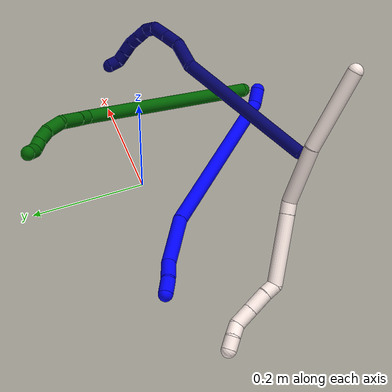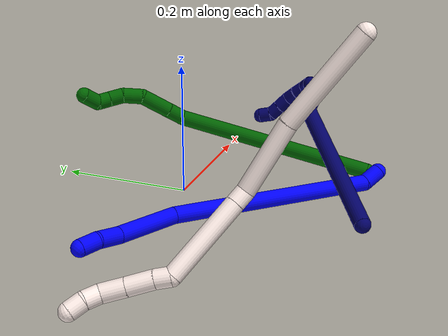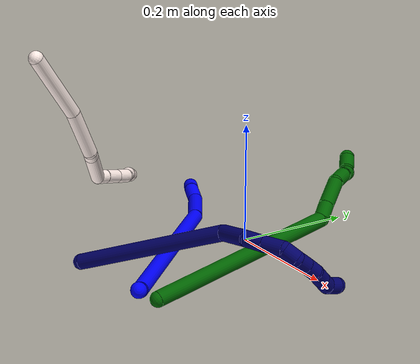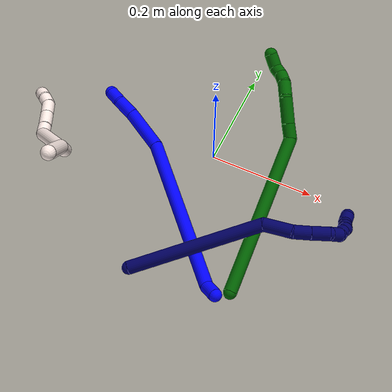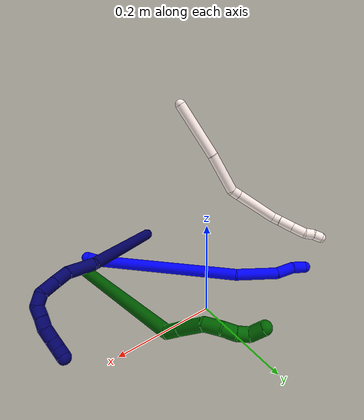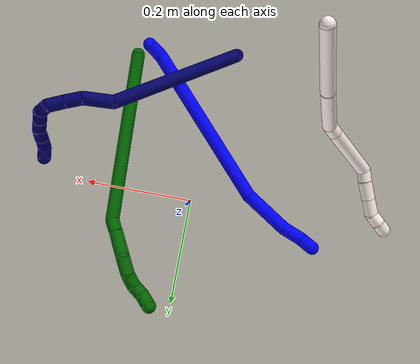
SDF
<sdf version="1.7">
 <world name="default">
  <model name="1">
   <static>0</static>
   <link name="1">
    <collision name="collision-cylinder-e_1_1_4">
     <pose>-0.001467 0.002556 -0.014623 -2.96853 -0.098531 1.03367</pose>
     <geometry><cylinder><radius>0.0125</radius><length>0.029834</length></cylinder></geometry>
     <surface>
      <friction><ode><mu>1.16</mu><mu2>1.16</mu2><slip1>0</slip1><slip2>0</slip2></ode></friction>
      <contact><ode><kp>1e+06</kp><kd>1</kd><max_vel>0</max_vel><min_depth>0.001</min_depth></ode></contact>
     </surface>
    </collision>
    <visual name="visual-cylinder-e_1_1_4">
     <pose>-0.001467 0.002556 -0.014623 -2.96853 -0.098531 1.03367</pose>
     <geometry><cylinder><radius>0.0125</radius><length>0.029834</length></cylinder></geometry>
     <material><ambient>0 0 1 1</ambient></material>
    </visual>
    <collision name="collision-cylinder-e_2_4_5">
     <pose>-0.062699 0.083069 -0.15115 -2.57264 -0.391686 1.19224</pose>
     <geometry><cylinder><radius>0.0125</radius><length>0.31311</length></cylinder></geometry>
     <surface>
      <friction><ode><mu>1.16</mu><mu2>1.16</mu2><slip1>0</slip1><slip2>0</slip2></ode></friction>
      <contact><ode><kp>1e+06</kp><kd>1</kd><max_vel>0</max_vel><min_depth>0.001</min_depth></ode></contact>
     </surface>
    </collision>
    <visual name="visual-cylinder-e_2_4_5">
     <pose>-0.062699 0.083069 -0.15115 -2.57264 -0.391686 1.19224</pose>
     <geometry><cylinder><radius>0.0125</radius><length>0.31311</length></cylinder></geometry>
     <material><ambient>0 0 1 1</ambient></material>
    </visual>
    <collision name="collision-cylinder-e_3_5_6">
     <pose>-0.142909 0.172766 -0.312311 -2.851 -0.462811 2.03013</pose>
     <geometry><cylinder><radius>0.0125</radius><length>0.091587</length></cylinder></geometry>
     <surface>
      <friction><ode><mu>1.16</mu><mu2>1.16</mu2><slip1>0</slip1><slip2>0</slip2></ode></friction>
      <contact><ode><kp>1e+06</kp><kd>1</kd><max_vel>0</max_vel><min_depth>0.001</min_depth></ode></contact>
     </surface>
    </collision>
    <visual name="visual-cylinder-e_3_5_6">
     <pose>-0.142909 0.172766 -0.312311 -2.851 -0.462811 2.03013</pose>
     <geometry><cylinder><radius>0.0125</radius><length>0.091587</length></cylinder></geometry>
     <material><ambient>0 0 1 1</ambient></material>
    </visual>
    <collision name="collision-cylinder-e_4_6_7">
     <pose>-0.176053 0.186626 -0.36538 -2.98928 -0.737685 2.75179</pose>
     <geometry><cylinder><radius>0.0125</radius><length>0.037761</length></cylinder></geometry>
     <surface>
      <friction><ode><mu>1.16</mu><mu2>1.16</mu2><slip1>0</slip1><slip2>0</slip2></ode></friction>
      <contact><ode><kp>1e+06</kp><kd>1</kd><max_vel>0</max_vel><min_depth>0.001</min_depth></ode></contact>
     </surface>
    </collision>
    <visual name="visual-cylinder-e_4_6_7">
     <pose>-0.176053 0.186626 -0.36538 -2.98928 -0.737685 2.75179</pose>
     <geometry><cylinder><radius>0.0125</radius><length>0.037761</length></cylinder></geometry>
     <material><ambient>0 0 1 1</ambient></material>
    </visual>
    <collision name="collision-cylinder-e_5_7_2">
     <pose>-0.194797 0.191326 -0.391385 -2.93312 -0.451596 2.28689</pose>
     <geometry><cylinder><radius>0.0125</radius><length>0.027707</length></cylinder></geometry>
     <surface>
      <friction><ode><mu>1.16</mu><mu2>1.16</mu2><slip1>0</slip1><slip2>0</slip2></ode></friction>
      <contact><ode><kp>1e+06</kp><kd>1</kd><max_vel>0</max_vel><min_depth>0.001</min_depth></ode></contact>
     </surface>
    </collision>
    <visual name="visual-cylinder-e_5_7_2">
     <pose>-0.194797 0.191326 -0.391385 -2.93312 -0.451596 2.28689</pose>
     <geometry><cylinder><radius>0.0125</radius><length>0.027707</length></cylinder></geometry>
     <material><ambient>0 0 1 1</ambient></material>
    </visual>
    <collision name="collision-sphere-2">
     <pose>-0.200843 0.193906 -0.40358 0 -0 0</pose>
     <geometry><sphere><radius>0.0125</radius></sphere></geometry>
     <surface>
      <friction><ode><mu>1.16</mu><mu2>1.16</mu2><slip1>0</slip1><slip2>0</slip2></ode></friction>
      <contact><ode><kp>1e+06</kp><kd>1</kd><max_vel>0</max_vel><min_depth>0.001</min_depth></ode></contact>
     </surface>
    </collision>
    <visual name="visual-sphere-2">
     <pose>-0.200843 0.193906 -0.40358 0 -0 0</pose>
     <geometry><sphere><radius>0.0125</radius></sphere></geometry>
     <material><ambient>0 0 1 1</ambient></material>
    </visual>
    <collision name="collision-sphere-7">
     <pose>-0.188751 0.188746 -0.37919 0 -0 0</pose>
     <geometry><sphere><radius>0.0125</radius></sphere></geometry>
     <surface>
      <friction><ode><mu>1.16</mu><mu2>1.16</mu2><slip1>0</slip1><slip2>0</slip2></ode></friction>
      <contact><ode><kp>1e+06</kp><kd>1</kd><max_vel>0</max_vel><min_depth>0.001</min_depth></ode></contact>
     </surface>
    </collision>
    <visual name="visual-sphere-7">
     <pose>-0.188751 0.188746 -0.37919 0 -0 0</pose>
     <geometry><sphere><radius>0.0125</radius></sphere></geometry>
     <material><ambient>0 0 1 1</ambient></material>
    </visual>
    <collision name="collision-sphere-6">
     <pose>-0.163354 0.184506 -0.351569 0 -0 0</pose>
     <geometry><sphere><radius>0.0125</radius></sphere></geometry>
     <surface>
      <friction><ode><mu>1.16</mu><mu2>1.16</mu2><slip1>0</slip1><slip2>0</slip2></ode></friction>
      <contact><ode><kp>1e+06</kp><kd>1</kd><max_vel>0</max_vel><min_depth>0.001</min_depth></ode></contact>
     </surface>
    </collision>
    <visual name="visual-sphere-6">
     <pose>-0.163354 0.184506 -0.351569 0 -0 0</pose>
     <geometry><sphere><radius>0.0125</radius></sphere></geometry>
     <material><ambient>0 0 1 1</ambient></material>
    </visual>
    <collision name="collision-sphere-5">
     <pose>-0.122464 0.161025 -0.273053 0 -0 0</pose>
     <geometry><sphere><radius>0.0125</radius></sphere></geometry>
     <surface>
      <friction><ode><mu>1.16</mu><mu2>1.16</mu2><slip1>0</slip1><slip2>0</slip2></ode></friction>
      <contact><ode><kp>1e+06</kp><kd>1</kd><max_vel>0</max_vel><min_depth>0.001</min_depth></ode></contact>
     </surface>
    </collision>
    <visual name="visual-sphere-5">
     <pose>-0.122464 0.161025 -0.273053 0 -0 0</pose>
     <geometry><sphere><radius>0.0125</radius></sphere></geometry>
     <material><ambient>0 0 1 1</ambient></material>
    </visual>
    <collision name="collision-sphere-1">
     <geometry><sphere><radius>0.0125</radius></sphere></geometry>
     <surface>
      <friction><ode><mu>1.16</mu><mu2>1.16</mu2><slip1>0</slip1><slip2>0</slip2></ode></friction>
      <contact><ode><kp>1e+06</kp><kd>1</kd><max_vel>0</max_vel><min_depth>0.001</min_depth></ode></contact>
     </surface>
    </collision>
    <visual name="visual-sphere-1">
     <geometry><sphere><radius>0.0125</radius></sphere></geometry>
     <material><ambient>0 0 1 1</ambient></material>
    </visual>
    <collision name="collision-sphere-4">
     <pose>-0.002935 0.005113 -0.029246 0 -0 0</pose>
     <geometry><sphere><radius>0.0125</radius></sphere></geometry>
     <surface>
      <friction><ode><mu>1.16</mu><mu2>1.16</mu2><slip1>0</slip1><slip2>0</slip2></ode></friction>
      <contact><ode><kp>1e+06</kp><kd>1</kd><max_vel>0</max_vel><min_depth>0.001</min_depth></ode></contact>
     </surface>
    </collision>
    <visual name="visual-sphere-4">
     <pose>-0.002935 0.005113 -0.029246 0 -0 0</pose>
     <geometry><sphere><radius>0.0125</radius></sphere></geometry>
     <material><ambient>0 0 1 1</ambient></material>
    </visual>
    <inertial>
     <pose>-0.089619 0.108515 -0.202016 0 -0 0</pose>
     <mass>0.5</mass>
     <inertia>
      <ixx>0.0031</ixx>
      <ixy>0</ixy>
      <ixz>0</ixz>
      <iyy>0.002017</iyy>
      <iyz>0</iyz>
      <izz>-0.000314</izz>
     </inertia>
    </inertial>
   </link>
   <pose>0.128806 -0.276052 0.023398 0.375192 0.970139 0.023917</pose>
  </model>
  <model name="6">
   <static>0</static>
   <link name="6">
    <collision name="collision-cylinder-e_1_1_4">
     <pose>-0.014463 0.148417 -0.055277 -1.92732 -0.091067 0.130998</pose>
     <geometry><cylinder><radius>0.0125</radius><length>0.31807</length></cylinder></geometry>
     <surface>
      <friction><ode><mu>1.16</mu><mu2>1.16</mu2><slip1>0</slip1><slip2>0</slip2></ode></friction>
      <contact><ode><kp>1e+06</kp><kd>1</kd><max_vel>0</max_vel><min_depth>0.001</min_depth></ode></contact>
     </surface>
    </collision>
    <visual name="visual-cylinder-e_1_1_4">
     <pose>-0.014463 0.148417 -0.055277 -1.92732 -0.091067 0.130998</pose>
     <geometry><cylinder><radius>0.0125</radius><length>0.31807</length></cylinder></geometry>
     <material><ambient>0 0.392157 0.003922 1</ambient></material>
    </visual>
    <collision name="collision-cylinder-e_2_4_5">
     <pose>-0.033086 0.310278 -0.106972 -1.31044 -0.29056 0.223932</pose>
     <geometry><cylinder><radius>0.0125</radius><length>0.029045</length></cylinder></geometry>
     <surface>
      <friction><ode><mu>1.16</mu><mu2>1.16</mu2><slip1>0</slip1><slip2>0</slip2></ode></friction>
      <contact><ode><kp>1e+06</kp><kd>1</kd><max_vel>0</max_vel><min_depth>0.001</min_depth></ode></contact>
     </surface>
    </collision>
    <visual name="visual-cylinder-e_2_4_5">
     <pose>-0.033086 0.310278 -0.106972 -1.31044 -0.29056 0.223932</pose>
     <geometry><cylinder><radius>0.0125</radius><length>0.029045</length></cylinder></geometry>
     <material><ambient>0 0.392157 0.003922 1</ambient></material>
    </visual>
    <collision name="collision-cylinder-e_3_5_6">
     <pose>-0.043823 0.34711 -0.098032 -1.34559 -0.267536 0.213641</pose>
     <geometry><cylinder><radius>0.0125</radius><length>0.049756</length></cylinder></geometry>
     <surface>
      <friction><ode><mu>1.16</mu><mu2>1.16</mu2><slip1>0</slip1><slip2>0</slip2></ode></friction>
      <contact><ode><kp>1e+06</kp><kd>1</kd><max_vel>0</max_vel><min_depth>0.001</min_depth></ode></contact>
     </surface>
    </collision>
    <visual name="visual-cylinder-e_3_5_6">
     <pose>-0.043823 0.34711 -0.098032 -1.34559 -0.267536 0.213641</pose>
     <geometry><cylinder><radius>0.0125</radius><length>0.049756</length></cylinder></geometry>
     <material><ambient>0 0.392157 0.003922 1</ambient></material>
    </visual>
    <collision name="collision-cylinder-e_4_6_7">
     <pose>-0.057939 0.38413 -0.095557 -1.77917 -0.495945 0.605433</pose>
     <geometry><cylinder><radius>0.0125</radius><length>0.031685</length></cylinder></geometry>
     <surface>
      <friction><ode><mu>1.16</mu><mu2>1.16</mu2><slip1>0</slip1><slip2>0</slip2></ode></friction>
      <contact><ode><kp>1e+06</kp><kd>1</kd><max_vel>0</max_vel><min_depth>0.001</min_depth></ode></contact>
     </surface>
    </collision>
    <visual name="visual-cylinder-e_4_6_7">
     <pose>-0.057939 0.38413 -0.095557 -1.77917 -0.495945 0.605433</pose>
     <geometry><cylinder><radius>0.0125</radius><length>0.031685</length></cylinder></geometry>
     <material><ambient>0 0.392157 0.003922 1</ambient></material>
    </visual>
    <collision name="collision-cylinder-e_5_7_8">
     <pose>-0.073669 0.405347 -0.101916 -2.00055 -0.776224 1.13455</pose>
     <geometry><cylinder><radius>0.0125</radius><length>0.023385</length></cylinder></geometry>
     <surface>
      <friction><ode><mu>1.16</mu><mu2>1.16</mu2><slip1>0</slip1><slip2>0</slip2></ode></friction>
      <contact><ode><kp>1e+06</kp><kd>1</kd><max_vel>0</max_vel><min_depth>0.001</min_depth></ode></contact>
     </surface>
    </collision>
    <visual name="visual-cylinder-e_5_7_8">
     <pose>-0.073669 0.405347 -0.101916 -2.00055 -0.776224 1.13455</pose>
     <geometry><cylinder><radius>0.0125</radius><length>0.023385</length></cylinder></geometry>
     <material><ambient>0 0.392157 0.003922 1</ambient></material>
    </visual>
    <collision name="collision-cylinder-e_6_8_9">
     <pose>-0.090324 0.418955 -0.106014 -1.67376 -0.949768 1.03611</pose>
     <geometry><cylinder><radius>0.0125</radius><length>0.020813</length></cylinder></geometry>
     <surface>
      <friction><ode><mu>1.16</mu><mu2>1.16</mu2><slip1>0</slip1><slip2>0</slip2></ode></friction>
      <contact><ode><kp>1e+06</kp><kd>1</kd><max_vel>0</max_vel><min_depth>0.001</min_depth></ode></contact>
     </surface>
    </collision>
    <visual name="visual-cylinder-e_6_8_9">
     <pose>-0.090324 0.418955 -0.106014 -1.67376 -0.949768 1.03611</pose>
     <geometry><cylinder><radius>0.0125</radius><length>0.020813</length></cylinder></geometry>
     <material><ambient>0 0.392157 0.003922 1</ambient></material>
    </visual>
    <collision name="collision-cylinder-e_7_9_2">
     <pose>-0.103945 0.436158 -0.100806 -1.09004 -0.38824 0.237262</pose>
     <geometry><cylinder><radius>0.0125</radius><length>0.027246</length></cylinder></geometry>
     <surface>
      <friction><ode><mu>1.16</mu><mu2>1.16</mu2><slip1>0</slip1><slip2>0</slip2></ode></friction>
      <contact><ode><kp>1e+06</kp><kd>1</kd><max_vel>0</max_vel><min_depth>0.001</min_depth></ode></contact>
     </surface>
    </collision>
    <visual name="visual-cylinder-e_7_9_2">
     <pose>-0.103945 0.436158 -0.100806 -1.09004 -0.38824 0.237262</pose>
     <geometry><cylinder><radius>0.0125</radius><length>0.027246</length></cylinder></geometry>
     <material><ambient>0 0.392157 0.003922 1</ambient></material>
    </visual>
    <collision name="collision-sphere-2">
     <pose>-0.109102 0.447337 -0.094975 0 -0 0</pose>
     <geometry><sphere><radius>0.0125</radius></sphere></geometry>
     <surface>
      <friction><ode><mu>1.16</mu><mu2>1.16</mu2><slip1>0</slip1><slip2>0</slip2></ode></friction>
      <contact><ode><kp>1e+06</kp><kd>1</kd><max_vel>0</max_vel><min_depth>0.001</min_depth></ode></contact>
     </surface>
    </collision>
    <visual name="visual-sphere-2">
     <pose>-0.109102 0.447337 -0.094975 0 -0 0</pose>
     <geometry><sphere><radius>0.0125</radius></sphere></geometry>
     <material><ambient>0 0.392157 0.003922 1</ambient></material>
    </visual>
    <collision name="collision-sphere-9">
     <pose>-0.098788 0.424978 -0.106637 0 -0 0</pose>
     <geometry><sphere><radius>0.0125</radius></sphere></geometry>
     <surface>
      <friction><ode><mu>1.16</mu><mu2>1.16</mu2><slip1>0</slip1><slip2>0</slip2></ode></friction>
      <contact><ode><kp>1e+06</kp><kd>1</kd><max_vel>0</max_vel><min_depth>0.001</min_depth></ode></contact>
     </surface>
    </collision>
    <visual name="visual-sphere-9">
     <pose>-0.098788 0.424978 -0.106637 0 -0 0</pose>
     <geometry><sphere><radius>0.0125</radius></sphere></geometry>
     <material><ambient>0 0.392157 0.003922 1</ambient></material>
    </visual>
    <collision name="collision-sphere-4">
     <pose>-0.028926 0.296833 -0.110553 0 -0 0</pose>
     <geometry><sphere><radius>0.0125</radius></sphere></geometry>
     <surface>
      <friction><ode><mu>1.16</mu><mu2>1.16</mu2><slip1>0</slip1><slip2>0</slip2></ode></friction>
      <contact><ode><kp>1e+06</kp><kd>1</kd><max_vel>0</max_vel><min_depth>0.001</min_depth></ode></contact>
     </surface>
    </collision>
    <visual name="visual-sphere-4">
     <pose>-0.028926 0.296833 -0.110553 0 -0 0</pose>
     <geometry><sphere><radius>0.0125</radius></sphere></geometry>
     <material><ambient>0 0.392157 0.003922 1</ambient></material>
    </visual>
    <collision name="collision-sphere-1">
     <geometry><sphere><radius>0.0125</radius></sphere></geometry>
     <surface>
      <friction><ode><mu>1.16</mu><mu2>1.16</mu2><slip1>0</slip1><slip2>0</slip2></ode></friction>
      <contact><ode><kp>1e+06</kp><kd>1</kd><max_vel>0</max_vel><min_depth>0.001</min_depth></ode></contact>
     </surface>
    </collision>
    <visual name="visual-sphere-1">
     <geometry><sphere><radius>0.0125</radius></sphere></geometry>
     <material><ambient>0 0.392157 0.003922 1</ambient></material>
    </visual>
    <collision name="collision-sphere-8">
     <pose>-0.081861 0.412932 -0.105392 0 -0 0</pose>
     <geometry><sphere><radius>0.0125</radius></sphere></geometry>
     <surface>
      <friction><ode><mu>1.16</mu><mu2>1.16</mu2><slip1>0</slip1><slip2>0</slip2></ode></friction>
      <contact><ode><kp>1e+06</kp><kd>1</kd><max_vel>0</max_vel><min_depth>0.001</min_depth></ode></contact>
     </surface>
    </collision>
    <visual name="visual-sphere-8">
     <pose>-0.081861 0.412932 -0.105392 0 -0 0</pose>
     <geometry><sphere><radius>0.0125</radius></sphere></geometry>
     <material><ambient>0 0.392157 0.003922 1</ambient></material>
    </visual>
    <collision name="collision-sphere-5">
     <pose>-0.037247 0.323723 -0.10339 0 -0 0</pose>
     <geometry><sphere><radius>0.0125</radius></sphere></geometry>
     <surface>
      <friction><ode><mu>1.16</mu><mu2>1.16</mu2><slip1>0</slip1><slip2>0</slip2></ode></friction>
      <contact><ode><kp>1e+06</kp><kd>1</kd><max_vel>0</max_vel><min_depth>0.001</min_depth></ode></contact>
     </surface>
    </collision>
    <visual name="visual-sphere-5">
     <pose>-0.037247 0.323723 -0.10339 0 -0 0</pose>
     <geometry><sphere><radius>0.0125</radius></sphere></geometry>
     <material><ambient>0 0.392157 0.003922 1</ambient></material>
    </visual>
    <collision name="collision-sphere-6">
     <pose>-0.0504 0.370498 -0.092674 0 -0 0</pose>
     <geometry><sphere><radius>0.0125</radius></sphere></geometry>
     <surface>
      <friction><ode><mu>1.16</mu><mu2>1.16</mu2><slip1>0</slip1><slip2>0</slip2></ode></friction>
      <contact><ode><kp>1e+06</kp><kd>1</kd><max_vel>0</max_vel><min_depth>0.001</min_depth></ode></contact>
     </surface>
    </collision>
    <visual name="visual-sphere-6">
     <pose>-0.0504 0.370498 -0.092674 0 -0 0</pose>
     <geometry><sphere><radius>0.0125</radius></sphere></geometry>
     <material><ambient>0 0.392157 0.003922 1</ambient></material>
    </visual>
    <collision name="collision-sphere-7">
     <pose>-0.065478 0.397763 -0.098439 0 -0 0</pose>
     <geometry><sphere><radius>0.0125</radius></sphere></geometry>
     <surface>
      <friction><ode><mu>1.16</mu><mu2>1.16</mu2><slip1>0</slip1><slip2>0</slip2></ode></friction>
      <contact><ode><kp>1e+06</kp><kd>1</kd><max_vel>0</max_vel><min_depth>0.001</min_depth></ode></contact>
     </surface>
    </collision>
    <visual name="visual-sphere-7">
     <pose>-0.065478 0.397763 -0.098439 0 -0 0</pose>
     <geometry><sphere><radius>0.0125</radius></sphere></geometry>
     <material><ambient>0 0.392157 0.003922 1</ambient></material>
    </visual>
    <inertial>
     <pose>-0.032024 0.231486 -0.071861 0 -0 0</pose>
     <mass>0.5</mass>
     <inertia>
      <ixx>0.00303</ixx>
      <ixy>0</ixy>
      <ixz>0</ixz>
      <iyy>-0.000501</iyy>
      <iyz>0</iyz>
      <izz>-0.002289</izz>
     </inertia>
    </inertial>
   </link>
   <pose>0.14877 -0.255083 0.011884 0.595441 -0.430348 -0.125923</pose>
  </model>
  <model name="7">
   <static>0</static>
   <link name="7">
    <collision name="collision-cylinder-e_1_1_4">
     <pose>0.053856 0.067914 0.093971 -0.625803 0.434846 -0.142703</pose>
     <geometry><cylinder><radius>0.0125</radius><length>0.255682</length></cylinder></geometry>
     <surface>
      <friction><ode><mu>1.16</mu><mu2>1.16</mu2><slip1>0</slip1><slip2>0</slip2></ode></friction>
      <contact><ode><kp>1e+06</kp><kd>1</kd><max_vel>0</max_vel><min_depth>0.001</min_depth></ode></contact>
     </surface>
    </collision>
    <visual name="visual-cylinder-e_1_1_4">
     <pose>0.053856 0.067914 0.093971 -0.625803 0.434846 -0.142703</pose>
     <geometry><cylinder><radius>0.0125</radius><length>0.255682</length></cylinder></geometry>
     <material><ambient>0.003922 0 0.403922 1</ambient></material>
    </visual>
    <collision name="collision-cylinder-e_2_4_5">
     <pose>0.1051 0.154831 0.207009 -0.783733 -0.096716 0.039993</pose>
     <geometry><cylinder><radius>0.0125</radius><length>0.054091</length></cylinder></geometry>
     <surface>
      <friction><ode><mu>1.16</mu><mu2>1.16</mu2><slip1>0</slip1><slip2>0</slip2></ode></friction>
      <contact><ode><kp>1e+06</kp><kd>1</kd><max_vel>0</max_vel><min_depth>0.001</min_depth></ode></contact>
     </surface>
    </collision>
    <visual name="visual-cylinder-e_2_4_5">
     <pose>0.1051 0.154831 0.207009 -0.783733 -0.096716 0.039993</pose>
     <geometry><cylinder><radius>0.0125</radius><length>0.054091</length></cylinder></geometry>
     <material><ambient>0.003922 0 0.403922 1</ambient></material>
    </visual>
    <collision name="collision-cylinder-e_3_5_6">
     <pose>0.102918 0.180644 0.240073 -0.452836 0.027607 -0.00636</pose>
     <geometry><cylinder><radius>0.0125</radius><length>0.031143</length></cylinder></geometry>
     <surface>
      <friction><ode><mu>1.16</mu><mu2>1.16</mu2><slip1>0</slip1><slip2>0</slip2></ode></friction>
      <contact><ode><kp>1e+06</kp><kd>1</kd><max_vel>0</max_vel><min_depth>0.001</min_depth></ode></contact>
     </surface>
    </collision>
    <visual name="visual-cylinder-e_3_5_6">
     <pose>0.102918 0.180644 0.240073 -0.452836 0.027607 -0.00636</pose>
     <geometry><cylinder><radius>0.0125</radius><length>0.031143</length></cylinder></geometry>
     <material><ambient>0.003922 0 0.403922 1</ambient></material>
    </visual>
    <collision name="collision-cylinder-e_4_6_7">
     <pose>0.104377 0.19441 0.269015 -0.435566 0.062335 -0.013799</pose>
     <geometry><cylinder><radius>0.0125</radius><length>0.033034</length></cylinder></geometry>
     <surface>
      <friction><ode><mu>1.16</mu><mu2>1.16</mu2><slip1>0</slip1><slip2>0</slip2></ode></friction>
      <contact><ode><kp>1e+06</kp><kd>1</kd><max_vel>0</max_vel><min_depth>0.001</min_depth></ode></contact>
     </surface>
    </collision>
    <visual name="visual-cylinder-e_4_6_7">
     <pose>0.104377 0.19441 0.269015 -0.435566 0.062335 -0.013799</pose>
     <geometry><cylinder><radius>0.0125</radius><length>0.033034</length></cylinder></geometry>
     <material><ambient>0.003922 0 0.403922 1</ambient></material>
    </visual>
    <collision name="collision-cylinder-e_5_7_8">
     <pose>0.104477 0.199405 0.295269 0.171647 -0.08073 -0.006949</pose>
     <geometry><cylinder><radius>0.0125</radius><length>0.023028</length></cylinder></geometry>
     <surface>
      <friction><ode><mu>1.16</mu><mu2>1.16</mu2><slip1>0</slip1><slip2>0</slip2></ode></friction>
      <contact><ode><kp>1e+06</kp><kd>1</kd><max_vel>0</max_vel><min_depth>0.001</min_depth></ode></contact>
     </surface>
    </collision>
    <visual name="visual-cylinder-e_5_7_8">
     <pose>0.104477 0.199405 0.295269 0.171647 -0.08073 -0.006949</pose>
     <geometry><cylinder><radius>0.0125</radius><length>0.023028</length></cylinder></geometry>
     <material><ambient>0.003922 0 0.403922 1</ambient></material>
    </visual>
    <collision name="collision-cylinder-e_6_8_9">
     <pose>0.105518 0.190269 0.313841 0.779295 0.190525 0.078435</pose>
     <geometry><cylinder><radius>0.0125</radius><length>0.020797</length></cylinder></geometry>
     <surface>
      <friction><ode><mu>1.16</mu><mu2>1.16</mu2><slip1>0</slip1><slip2>0</slip2></ode></friction>
      <contact><ode><kp>1e+06</kp><kd>1</kd><max_vel>0</max_vel><min_depth>0.001</min_depth></ode></contact>
     </surface>
    </collision>
    <visual name="visual-cylinder-e_6_8_9">
     <pose>0.105518 0.190269 0.313841 0.779295 0.190525 0.078435</pose>
     <geometry><cylinder><radius>0.0125</radius><length>0.020797</length></cylinder></geometry>
     <material><ambient>0.003922 0 0.403922 1</ambient></material>
    </visual>
    <collision name="collision-cylinder-e_7_9_10">
     <pose>0.108779 0.17657 0.328628 0.714336 0.129027 0.048207</pose>
     <geometry><cylinder><radius>0.0125</radius><length>0.020083</length></cylinder></geometry>
     <surface>
      <friction><ode><mu>1.16</mu><mu2>1.16</mu2><slip1>0</slip1><slip2>0</slip2></ode></friction>
      <contact><ode><kp>1e+06</kp><kd>1</kd><max_vel>0</max_vel><min_depth>0.001</min_depth></ode></contact>
     </surface>
    </collision>
    <visual name="visual-cylinder-e_7_9_10">
     <pose>0.108779 0.17657 0.328628 0.714336 0.129027 0.048207</pose>
     <geometry><cylinder><radius>0.0125</radius><length>0.020083</length></cylinder></geometry>
     <material><ambient>0.003922 0 0.403922 1</ambient></material>
    </visual>
    <collision name="collision-cylinder-e_8_10_11">
     <pose>0.111294 0.160822 0.341852 1.01728 0.112327 0.062676</pose>
     <geometry><cylinder><radius>0.0125</radius><length>0.021824</length></cylinder></geometry>
     <surface>
      <friction><ode><mu>1.16</mu><mu2>1.16</mu2><slip1>0</slip1><slip2>0</slip2></ode></friction>
      <contact><ode><kp>1e+06</kp><kd>1</kd><max_vel>0</max_vel><min_depth>0.001</min_depth></ode></contact>
     </surface>
    </collision>
    <visual name="visual-cylinder-e_8_10_11">
     <pose>0.111294 0.160822 0.341852 1.01728 0.112327 0.062676</pose>
     <geometry><cylinder><radius>0.0125</radius><length>0.021824</length></cylinder></geometry>
     <material><ambient>0.003922 0 0.403922 1</ambient></material>
    </visual>
    <collision name="collision-cylinder-e_9_11_12">
     <pose>0.113724 0.143098 0.352844 1.01391 0.119913 0.06665</pose>
     <geometry><cylinder><radius>0.0125</radius><length>0.020171</length></cylinder></geometry>
     <surface>
      <friction><ode><mu>1.16</mu><mu2>1.16</mu2><slip1>0</slip1><slip2>0</slip2></ode></friction>
      <contact><ode><kp>1e+06</kp><kd>1</kd><max_vel>0</max_vel><min_depth>0.001</min_depth></ode></contact>
     </surface>
    </collision>
    <visual name="visual-cylinder-e_9_11_12">
     <pose>0.113724 0.143098 0.352844 1.01391 0.119913 0.06665</pose>
     <geometry><cylinder><radius>0.0125</radius><length>0.020171</length></cylinder></geometry>
     <material><ambient>0.003922 0 0.403922 1</ambient></material>
    </visual>
    <collision name="collision-cylinder-e_10_12_2">
     <pose>0.120983 0.128953 0.363878 0.776942 0.644589 0.271657</pose>
     <geometry><cylinder><radius>0.0125</radius><length>0.020146</length></cylinder></geometry>
     <surface>
      <friction><ode><mu>1.16</mu><mu2>1.16</mu2><slip1>0</slip1><slip2>0</slip2></ode></friction>
      <contact><ode><kp>1e+06</kp><kd>1</kd><max_vel>0</max_vel><min_depth>0.001</min_depth></ode></contact>
     </surface>
    </collision>
    <visual name="visual-cylinder-e_10_12_2">
     <pose>0.120983 0.128953 0.363878 0.776942 0.644589 0.271657</pose>
     <geometry><cylinder><radius>0.0125</radius><length>0.020146</length></cylinder></geometry>
     <material><ambient>0.003922 0 0.403922 1</ambient></material>
    </visual>
    <collision name="collision-sphere-2">
     <pose>0.127035 0.123307 0.369619 0 -0 0</pose>
     <geometry><sphere><radius>0.0125</radius></sphere></geometry>
     <surface>
      <friction><ode><mu>1.16</mu><mu2>1.16</mu2><slip1>0</slip1><slip2>0</slip2></ode></friction>
      <contact><ode><kp>1e+06</kp><kd>1</kd><max_vel>0</max_vel><min_depth>0.001</min_depth></ode></contact>
     </surface>
    </collision>
    <visual name="visual-sphere-2">
     <pose>0.127035 0.123307 0.369619 0 -0 0</pose>
     <geometry><sphere><radius>0.0125</radius></sphere></geometry>
     <material><ambient>0.003922 0 0.403922 1</ambient></material>
    </visual>
    <collision name="collision-sphere-12">
     <pose>0.11493 0.134598 0.358137 0 -0 0</pose>
     <geometry><sphere><radius>0.0125</radius></sphere></geometry>
     <surface>
      <friction><ode><mu>1.16</mu><mu2>1.16</mu2><slip1>0</slip1><slip2>0</slip2></ode></friction>
      <contact><ode><kp>1e+06</kp><kd>1</kd><max_vel>0</max_vel><min_depth>0.001</min_depth></ode></contact>
     </surface>
    </collision>
    <visual name="visual-sphere-12">
     <pose>0.11493 0.134598 0.358137 0 -0 0</pose>
     <geometry><sphere><radius>0.0125</radius></sphere></geometry>
     <material><ambient>0.003922 0 0.403922 1</ambient></material>
    </visual>
    <collision name="collision-sphere-11">
     <pose>0.112517 0.151598 0.347552 0 -0 0</pose>
     <geometry><sphere><radius>0.0125</radius></sphere></geometry>
     <surface>
      <friction><ode><mu>1.16</mu><mu2>1.16</mu2><slip1>0</slip1><slip2>0</slip2></ode></friction>
      <contact><ode><kp>1e+06</kp><kd>1</kd><max_vel>0</max_vel><min_depth>0.001</min_depth></ode></contact>
     </surface>
    </collision>
    <visual name="visual-sphere-11">
     <pose>0.112517 0.151598 0.347552 0 -0 0</pose>
     <geometry><sphere><radius>0.0125</radius></sphere></geometry>
     <material><ambient>0.003922 0 0.403922 1</ambient></material>
    </visual>
    <collision name="collision-sphere-10">
     <pose>0.110071 0.170046 0.336152 0 -0 0</pose>
     <geometry><sphere><radius>0.0125</radius></sphere></geometry>
     <surface>
      <friction><ode><mu>1.16</mu><mu2>1.16</mu2><slip1>0</slip1><slip2>0</slip2></ode></friction>
      <contact><ode><kp>1e+06</kp><kd>1</kd><max_vel>0</max_vel><min_depth>0.001</min_depth></ode></contact>
     </surface>
    </collision>
    <visual name="visual-sphere-10">
     <pose>0.110071 0.170046 0.336152 0 -0 0</pose>
     <geometry><sphere><radius>0.0125</radius></sphere></geometry>
     <material><ambient>0.003922 0 0.403922 1</ambient></material>
    </visual>
    <collision name="collision-sphere-9">
     <pose>0.107487 0.183093 0.321104 0 -0 0</pose>
     <geometry><sphere><radius>0.0125</radius></sphere></geometry>
     <surface>
      <friction><ode><mu>1.16</mu><mu2>1.16</mu2><slip1>0</slip1><slip2>0</slip2></ode></friction>
      <contact><ode><kp>1e+06</kp><kd>1</kd><max_vel>0</max_vel><min_depth>0.001</min_depth></ode></contact>
     </surface>
    </collision>
    <visual name="visual-sphere-9">
     <pose>0.107487 0.183093 0.321104 0 -0 0</pose>
     <geometry><sphere><radius>0.0125</radius></sphere></geometry>
     <material><ambient>0.003922 0 0.403922 1</ambient></material>
    </visual>
    <collision name="collision-sphere-4">
     <pose>0.107711 0.135828 0.187943 0 -0 0</pose>
     <geometry><sphere><radius>0.0125</radius></sphere></geometry>
     <surface>
      <friction><ode><mu>1.16</mu><mu2>1.16</mu2><slip1>0</slip1><slip2>0</slip2></ode></friction>
      <contact><ode><kp>1e+06</kp><kd>1</kd><max_vel>0</max_vel><min_depth>0.001</min_depth></ode></contact>
     </surface>
    </collision>
    <visual name="visual-sphere-4">
     <pose>0.107711 0.135828 0.187943 0 -0 0</pose>
     <geometry><sphere><radius>0.0125</radius></sphere></geometry>
     <material><ambient>0.003922 0 0.403922 1</ambient></material>
    </visual>
    <collision name="collision-sphere-1">
     <geometry><sphere><radius>0.0125</radius></sphere></geometry>
     <surface>
      <friction><ode><mu>1.16</mu><mu2>1.16</mu2><slip1>0</slip1><slip2>0</slip2></ode></friction>
      <contact><ode><kp>1e+06</kp><kd>1</kd><max_vel>0</max_vel><min_depth>0.001</min_depth></ode></contact>
     </surface>
    </collision>
    <visual name="visual-sphere-1">
     <geometry><sphere><radius>0.0125</radius></sphere></geometry>
     <material><ambient>0.003922 0 0.403922 1</ambient></material>
    </visual>
    <collision name="collision-sphere-8">
     <pose>0.103549 0.197444 0.306577 0 -0 0</pose>
     <geometry><sphere><radius>0.0125</radius></sphere></geometry>
     <surface>
      <friction><ode><mu>1.16</mu><mu2>1.16</mu2><slip1>0</slip1><slip2>0</slip2></ode></friction>
      <contact><ode><kp>1e+06</kp><kd>1</kd><max_vel>0</max_vel><min_depth>0.001</min_depth></ode></contact>
     </surface>
    </collision>
    <visual name="visual-sphere-8">
     <pose>0.103549 0.197444 0.306577 0 -0 0</pose>
     <geometry><sphere><radius>0.0125</radius></sphere></geometry>
     <material><ambient>0.003922 0 0.403922 1</ambient></material>
    </visual>
    <collision name="collision-sphere-5">
     <pose>0.102488 0.173834 0.226076 0 -0 0</pose>
     <geometry><sphere><radius>0.0125</radius></sphere></geometry>
     <surface>
      <friction><ode><mu>1.16</mu><mu2>1.16</mu2><slip1>0</slip1><slip2>0</slip2></ode></friction>
      <contact><ode><kp>1e+06</kp><kd>1</kd><max_vel>0</max_vel><min_depth>0.001</min_depth></ode></contact>
     </surface>
    </collision>
    <visual name="visual-sphere-5">
     <pose>0.102488 0.173834 0.226076 0 -0 0</pose>
     <geometry><sphere><radius>0.0125</radius></sphere></geometry>
     <material><ambient>0.003922 0 0.403922 1</ambient></material>
    </visual>
    <collision name="collision-sphere-6">
     <pose>0.103348 0.187454 0.25407 0 -0 0</pose>
     <geometry><sphere><radius>0.0125</radius></sphere></geometry>
     <surface>
      <friction><ode><mu>1.16</mu><mu2>1.16</mu2><slip1>0</slip1><slip2>0</slip2></ode></friction>
      <contact><ode><kp>1e+06</kp><kd>1</kd><max_vel>0</max_vel><min_depth>0.001</min_depth></ode></contact>
     </surface>
    </collision>
    <visual name="visual-sphere-6">
     <pose>0.103348 0.187454 0.25407 0 -0 0</pose>
     <geometry><sphere><radius>0.0125</radius></sphere></geometry>
     <material><ambient>0.003922 0 0.403922 1</ambient></material>
    </visual>
    <collision name="collision-sphere-7">
     <pose>0.105406 0.201365 0.283961 0 -0 0</pose>
     <geometry><sphere><radius>0.0125</radius></sphere></geometry>
     <surface>
      <friction><ode><mu>1.16</mu><mu2>1.16</mu2><slip1>0</slip1><slip2>0</slip2></ode></friction>
      <contact><ode><kp>1e+06</kp><kd>1</kd><max_vel>0</max_vel><min_depth>0.001</min_depth></ode></contact>
     </surface>
    </collision>
    <visual name="visual-sphere-7">
     <pose>0.105406 0.201365 0.283961 0 -0 0</pose>
     <geometry><sphere><radius>0.0125</radius></sphere></geometry>
     <material><ambient>0.003922 0 0.403922 1</ambient></material>
    </visual>
    <inertial>
     <pose>0.080106 0.117753 0.186845 0 -0 0</pose>
     <mass>0.5</mass>
     <inertia>
      <ixx>0.001122</ixx>
      <ixy>0</ixy>
      <ixz>0</ixz>
      <iyy>0.00103</iyy>
      <iyz>0</iyz>
      <izz>-0.001316</izz>
     </inertia>
    </inertial>
   </link>
   <pose>-0.035347 -0.288389 0.012434 2.08569 -0.658513 1.88806</pose>
  </model>
  <model name="11">
   <static>0</static>
   <link name="11">
    <collision name="collision-cylinder-e_1_1_4">
     <pose>-0.020122 0.011682 -0.06443 -2.96223 -0.298137 2.06258</pose>
     <geometry><cylinder><radius>0.0125</radius><length>0.137005</length></cylinder></geometry>
     <surface>
      <friction><ode><mu>1.16</mu><mu2>1.16</mu2><slip1>0</slip1><slip2>0</slip2></ode></friction>
      <contact><ode><kp>1e+06</kp><kd>1</kd><max_vel>0</max_vel><min_depth>0.001</min_depth></ode></contact>
     </surface>
    </collision>
    <visual name="visual-cylinder-e_1_1_4">
     <pose>-0.020122 0.011682 -0.06443 -2.96223 -0.298137 2.06258</pose>
     <geometry><cylinder><radius>0.0125</radius><length>0.137005</length></cylinder></geometry>
     <material><ambient>1 0.933333 0.909804 1</ambient></material>
    </visual>
    <collision name="collision-cylinder-e_2_4_5">
     <pose>-0.060238 0.034479 -0.171699 -2.88773 -0.424322 2.07187</pose>
     <geometry><cylinder><radius>0.0125</radius><length>0.09713</length></cylinder></geometry>
     <surface>
      <friction><ode><mu>1.16</mu><mu2>1.16</mu2><slip1>0</slip1><slip2>0</slip2></ode></friction>
      <contact><ode><kp>1e+06</kp><kd>1</kd><max_vel>0</max_vel><min_depth>0.001</min_depth></ode></contact>
     </surface>
    </collision>
    <visual name="visual-cylinder-e_2_4_5">
     <pose>-0.060238 0.034479 -0.171699 -2.88773 -0.424322 2.07187</pose>
     <geometry><cylinder><radius>0.0125</radius><length>0.09713</length></cylinder></geometry>
     <material><ambient>1 0.933333 0.909804 1</ambient></material>
    </visual>
    <collision name="collision-cylinder-e_3_5_6">
     <pose>-0.081323 0.051611 -0.222858 -2.51551 -0.10583 0.324386</pose>
     <geometry><cylinder><radius>0.0125</radius><length>0.020649</length></cylinder></geometry>
     <surface>
      <friction><ode><mu>1.16</mu><mu2>1.16</mu2><slip1>0</slip1><slip2>0</slip2></ode></friction>
      <contact><ode><kp>1e+06</kp><kd>1</kd><max_vel>0</max_vel><min_depth>0.001</min_depth></ode></contact>
     </surface>
    </collision>
    <visual name="visual-cylinder-e_3_5_6">
     <pose>-0.081323 0.051611 -0.222858 -2.51551 -0.10583 0.324386</pose>
     <geometry><cylinder><radius>0.0125</radius><length>0.020649</length></cylinder></geometry>
     <material><ambient>1 0.933333 0.909804 1</ambient></material>
    </visual>
    <collision name="collision-cylinder-e_4_6_7">
     <pose>-0.088589 0.090893 -0.277333 -2.51708 -0.108118 0.33216</pose>
     <geometry><cylinder><radius>0.0125</radius><length>0.114456</length></cylinder></geometry>
     <surface>
      <friction><ode><mu>1.16</mu><mu2>1.16</mu2><slip1>0</slip1><slip2>0</slip2></ode></friction>
      <contact><ode><kp>1e+06</kp><kd>1</kd><max_vel>0</max_vel><min_depth>0.001</min_depth></ode></contact>
     </surface>
    </collision>
    <visual name="visual-cylinder-e_4_6_7">
     <pose>-0.088589 0.090893 -0.277333 -2.51708 -0.108118 0.33216</pose>
     <geometry><cylinder><radius>0.0125</radius><length>0.114456</length></cylinder></geometry>
     <material><ambient>1 0.933333 0.909804 1</ambient></material>
    </visual>
    <collision name="collision-cylinder-e_5_7_8">
     <pose>-0.090526 0.125095 -0.332958 -3.04306 0.419028 -2.68589</pose>
     <geometry><cylinder><radius>0.0125</radius><length>0.020836</length></cylinder></geometry>
     <surface>
      <friction><ode><mu>1.16</mu><mu2>1.16</mu2><slip1>0</slip1><slip2>0</slip2></ode></friction>
      <contact><ode><kp>1e+06</kp><kd>1</kd><max_vel>0</max_vel><min_depth>0.001</min_depth></ode></contact>
     </surface>
    </collision>
    <visual name="visual-cylinder-e_5_7_8">
     <pose>-0.090526 0.125095 -0.332958 -3.04306 0.419028 -2.68589</pose>
     <geometry><cylinder><radius>0.0125</radius><length>0.020836</length></cylinder></geometry>
     <material><ambient>1 0.933333 0.909804 1</ambient></material>
    </visual>
    <collision name="collision-cylinder-e_6_8_9">
     <pose>-0.080382 0.129181 -0.358633 -2.94957 0.34352 -2.12796</pose>
     <geometry><cylinder><radius>0.0125</radius><length>0.035063</length></cylinder></geometry>
     <surface>
      <friction><ode><mu>1.16</mu><mu2>1.16</mu2><slip1>0</slip1><slip2>0</slip2></ode></friction>
      <contact><ode><kp>1e+06</kp><kd>1</kd><max_vel>0</max_vel><min_depth>0.001</min_depth></ode></contact>
     </surface>
    </collision>
    <visual name="visual-cylinder-e_6_8_9">
     <pose>-0.080382 0.129181 -0.358633 -2.94957 0.34352 -2.12796</pose>
     <geometry><cylinder><radius>0.0125</radius><length>0.035063</length></cylinder></geometry>
     <material><ambient>1 0.933333 0.909804 1</ambient></material>
    </visual>
    <collision name="collision-cylinder-e_7_9_10">
     <pose>-0.068685 0.135297 -0.389768 -2.94552 0.3636 -2.15907</pose>
     <geometry><cylinder><radius>0.0125</radius><length>0.032576</length></cylinder></geometry>
     <surface>
      <friction><ode><mu>1.16</mu><mu2>1.16</mu2><slip1>0</slip1><slip2>0</slip2></ode></friction>
      <contact><ode><kp>1e+06</kp><kd>1</kd><max_vel>0</max_vel><min_depth>0.001</min_depth></ode></contact>
     </surface>
    </collision>
    <visual name="visual-cylinder-e_7_9_10">
     <pose>-0.068685 0.135297 -0.389768 -2.94552 0.3636 -2.15907</pose>
     <geometry><cylinder><radius>0.0125</radius><length>0.032576</length></cylinder></geometry>
     <material><ambient>1 0.933333 0.909804 1</ambient></material>
    </visual>
    <collision name="collision-cylinder-e_8_10_11">
     <pose>-0.058785 0.144387 -0.41227 -2.46139 0.399184 -1.03865</pose>
     <geometry><cylinder><radius>0.0125</radius><length>0.021136</length></cylinder></geometry>
     <surface>
      <friction><ode><mu>1.16</mu><mu2>1.16</mu2><slip1>0</slip1><slip2>0</slip2></ode></friction>
      <contact><ode><kp>1e+06</kp><kd>1</kd><max_vel>0</max_vel><min_depth>0.001</min_depth></ode></contact>
     </surface>
    </collision>
    <visual name="visual-cylinder-e_8_10_11">
     <pose>-0.058785 0.144387 -0.41227 -2.46139 0.399184 -1.03865</pose>
     <geometry><cylinder><radius>0.0125</radius><length>0.021136</length></cylinder></geometry>
     <material><ambient>1 0.933333 0.909804 1</ambient></material>
    </visual>
    <collision name="collision-cylinder-e_9_11_2">
     <pose>-0.053242 0.15639 -0.428512 -2.5459 0.136147 -0.437099</pose>
     <geometry><cylinder><radius>0.0125</radius><length>0.02115</length></cylinder></geometry>
     <surface>
      <friction><ode><mu>1.16</mu><mu2>1.16</mu2><slip1>0</slip1><slip2>0</slip2></ode></friction>
      <contact><ode><kp>1e+06</kp><kd>1</kd><max_vel>0</max_vel><min_depth>0.001</min_depth></ode></contact>
     </surface>
    </collision>
    <visual name="visual-cylinder-e_9_11_2">
     <pose>-0.053242 0.15639 -0.428512 -2.5459 0.136147 -0.437099</pose>
     <geometry><cylinder><radius>0.0125</radius><length>0.02115</length></cylinder></geometry>
     <material><ambient>1 0.933333 0.909804 1</ambient></material>
    </visual>
    <collision name="collision-sphere-2">
     <pose>-0.051807 0.162268 -0.437184 0 -0 0</pose>
     <geometry><sphere><radius>0.0125</radius></sphere></geometry>
     <surface>
      <friction><ode><mu>1.16</mu><mu2>1.16</mu2><slip1>0</slip1><slip2>0</slip2></ode></friction>
      <contact><ode><kp>1e+06</kp><kd>1</kd><max_vel>0</max_vel><min_depth>0.001</min_depth></ode></contact>
     </surface>
    </collision>
    <visual name="visual-sphere-2">
     <pose>-0.051807 0.162268 -0.437184 0 -0 0</pose>
     <geometry><sphere><radius>0.0125</radius></sphere></geometry>
     <material><ambient>1 0.933333 0.909804 1</ambient></material>
    </visual>
    <collision name="collision-sphere-11">
     <pose>-0.054677 0.150511 -0.41984 0 -0 0</pose>
     <geometry><sphere><radius>0.0125</radius></sphere></geometry>
     <surface>
      <friction><ode><mu>1.16</mu><mu2>1.16</mu2><slip1>0</slip1><slip2>0</slip2></ode></friction>
      <contact><ode><kp>1e+06</kp><kd>1</kd><max_vel>0</max_vel><min_depth>0.001</min_depth></ode></contact>
     </surface>
    </collision>
    <visual name="visual-sphere-11">
     <pose>-0.054677 0.150511 -0.41984 0 -0 0</pose>
     <geometry><sphere><radius>0.0125</radius></sphere></geometry>
     <material><ambient>1 0.933333 0.909804 1</ambient></material>
    </visual>
    <collision name="collision-sphere-10">
     <pose>-0.062892 0.138263 -0.4047 0 -0 0</pose>
     <geometry><sphere><radius>0.0125</radius></sphere></geometry>
     <surface>
      <friction><ode><mu>1.16</mu><mu2>1.16</mu2><slip1>0</slip1><slip2>0</slip2></ode></friction>
      <contact><ode><kp>1e+06</kp><kd>1</kd><max_vel>0</max_vel><min_depth>0.001</min_depth></ode></contact>
     </surface>
    </collision>
    <visual name="visual-sphere-10">
     <pose>-0.062892 0.138263 -0.4047 0 -0 0</pose>
     <geometry><sphere><radius>0.0125</radius></sphere></geometry>
     <material><ambient>1 0.933333 0.909804 1</ambient></material>
    </visual>
    <collision name="collision-sphere-9">
     <pose>-0.074477 0.132332 -0.374837 0 -0 0</pose>
     <geometry><sphere><radius>0.0125</radius></sphere></geometry>
     <surface>
      <friction><ode><mu>1.16</mu><mu2>1.16</mu2><slip1>0</slip1><slip2>0</slip2></ode></friction>
      <contact><ode><kp>1e+06</kp><kd>1</kd><max_vel>0</max_vel><min_depth>0.001</min_depth></ode></contact>
     </surface>
    </collision>
    <visual name="visual-sphere-9">
     <pose>-0.074477 0.132332 -0.374837 0 -0 0</pose>
     <geometry><sphere><radius>0.0125</radius></sphere></geometry>
     <material><ambient>1 0.933333 0.909804 1</ambient></material>
    </visual>
    <collision name="collision-sphere-4">
     <pose>-0.040244 0.023364 -0.12886 0 -0 0</pose>
     <geometry><sphere><radius>0.0125</radius></sphere></geometry>
     <surface>
      <friction><ode><mu>1.16</mu><mu2>1.16</mu2><slip1>0</slip1><slip2>0</slip2></ode></friction>
      <contact><ode><kp>1e+06</kp><kd>1</kd><max_vel>0</max_vel><min_depth>0.001</min_depth></ode></contact>
     </surface>
    </collision>
    <visual name="visual-sphere-4">
     <pose>-0.040244 0.023364 -0.12886 0 -0 0</pose>
     <geometry><sphere><radius>0.0125</radius></sphere></geometry>
     <material><ambient>1 0.933333 0.909804 1</ambient></material>
    </visual>
    <collision name="collision-sphere-1">
     <geometry><sphere><radius>0.0125</radius></sphere></geometry>
     <surface>
      <friction><ode><mu>1.16</mu><mu2>1.16</mu2><slip1>0</slip1><slip2>0</slip2></ode></friction>
      <contact><ode><kp>1e+06</kp><kd>1</kd><max_vel>0</max_vel><min_depth>0.001</min_depth></ode></contact>
     </surface>
    </collision>
    <visual name="visual-sphere-1">
     <geometry><sphere><radius>0.0125</radius></sphere></geometry>
     <material><ambient>1 0.933333 0.909804 1</ambient></material>
    </visual>
    <collision name="collision-sphere-8">
     <pose>-0.086287 0.126031 -0.342429 0 -0 0</pose>
     <geometry><sphere><radius>0.0125</radius></sphere></geometry>
     <surface>
      <friction><ode><mu>1.16</mu><mu2>1.16</mu2><slip1>0</slip1><slip2>0</slip2></ode></friction>
      <contact><ode><kp>1e+06</kp><kd>1</kd><max_vel>0</max_vel><min_depth>0.001</min_depth></ode></contact>
     </surface>
    </collision>
    <visual name="visual-sphere-8">
     <pose>-0.086287 0.126031 -0.342429 0 -0 0</pose>
     <geometry><sphere><radius>0.0125</radius></sphere></geometry>
     <material><ambient>1 0.933333 0.909804 1</ambient></material>
    </visual>
    <collision name="collision-sphere-5">
     <pose>-0.080232 0.045595 -0.214539 0 -0 0</pose>
     <geometry><sphere><radius>0.0125</radius></sphere></geometry>
     <surface>
      <friction><ode><mu>1.16</mu><mu2>1.16</mu2><slip1>0</slip1><slip2>0</slip2></ode></friction>
      <contact><ode><kp>1e+06</kp><kd>1</kd><max_vel>0</max_vel><min_depth>0.001</min_depth></ode></contact>
     </surface>
    </collision>
    <visual name="visual-sphere-5">
     <pose>-0.080232 0.045595 -0.214539 0 -0 0</pose>
     <geometry><sphere><radius>0.0125</radius></sphere></geometry>
     <material><ambient>1 0.933333 0.909804 1</ambient></material>
    </visual>
    <collision name="collision-sphere-6">
     <pose>-0.082414 0.057627 -0.231178 0 -0 0</pose>
     <geometry><sphere><radius>0.0125</radius></sphere></geometry>
     <surface>
      <friction><ode><mu>1.16</mu><mu2>1.16</mu2><slip1>0</slip1><slip2>0</slip2></ode></friction>
      <contact><ode><kp>1e+06</kp><kd>1</kd><max_vel>0</max_vel><min_depth>0.001</min_depth></ode></contact>
     </surface>
    </collision>
    <visual name="visual-sphere-6">
     <pose>-0.082414 0.057627 -0.231178 0 -0 0</pose>
     <geometry><sphere><radius>0.0125</radius></sphere></geometry>
     <material><ambient>1 0.933333 0.909804 1</ambient></material>
    </visual>
    <collision name="collision-sphere-7">
     <pose>-0.094764 0.124159 -0.323488 0 -0 0</pose>
     <geometry><sphere><radius>0.0125</radius></sphere></geometry>
     <surface>
      <friction><ode><mu>1.16</mu><mu2>1.16</mu2><slip1>0</slip1><slip2>0</slip2></ode></friction>
      <contact><ode><kp>1e+06</kp><kd>1</kd><max_vel>0</max_vel><min_depth>0.001</min_depth></ode></contact>
     </surface>
    </collision>
    <visual name="visual-sphere-7">
     <pose>-0.094764 0.124159 -0.323488 0 -0 0</pose>
     <geometry><sphere><radius>0.0125</radius></sphere></geometry>
     <material><ambient>1 0.933333 0.909804 1</ambient></material>
    </visual>
    <inertial>
     <pose>-0.059474 0.068642 -0.223669 0 -0 0</pose>
     <mass>0.5</mass>
     <inertia>
      <ixx>0.000263</ixx>
      <ixy>0</ixy>
      <ixz>0</ixz>
      <iyy>0.000359</iyy>
      <iyz>0</iyz>
      <izz>-6.3e-05</izz>
     </inertia>
    </inertial>
   </link>
   <pose>-0.154683 -0.296866 0.317347 -0.189213 -0.96149 2.00663</pose>
  </model>
 </world>
</sdf>
